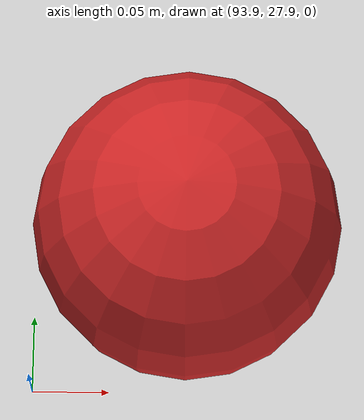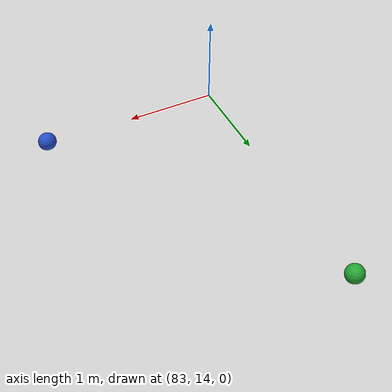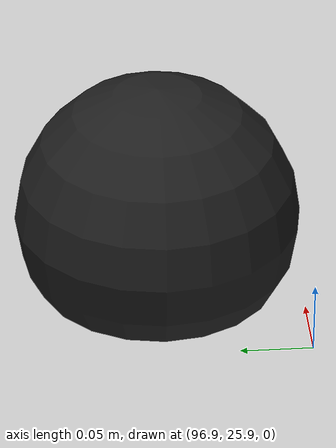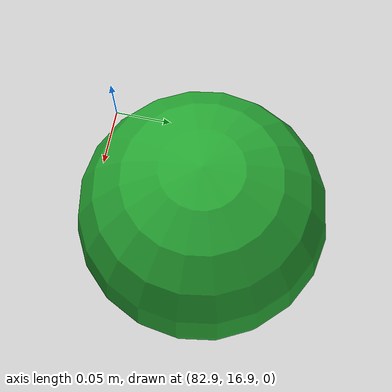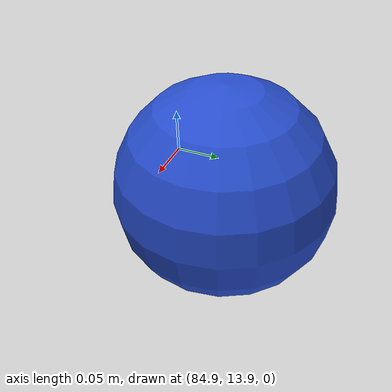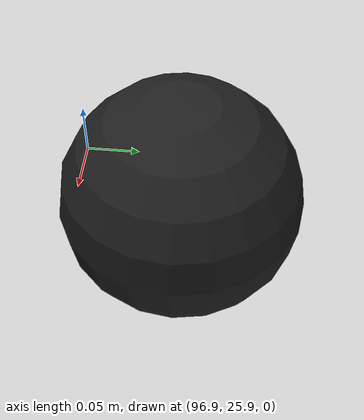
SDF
<sdf version="1.4">
 <world name="geonav">
  <light name="sun" type="directional">
   <pose>0 0 10 0 -0 0</pose>
   <diffuse>0.8 0.8 0.8 1</diffuse>
   <specular>0.2 0.2 0.2 1</specular>
   <attenuation>
    <range>1000</range>
    <constant>0.9</constant>
    <linear>0.01</linear>
    <quadratic>0.001</quadratic>
   </attenuation>
   <direction>-0.5 0.1 -0.9</direction>
  </light>
  <model name="ground_plane">
   <static>1</static>
   <link name="link">
    <collision name="collision">
     <geometry><plane><normal>0 0 1</normal><size>100 100</size></plane></geometry>
     <surface><friction><ode><mu>100</mu><mu2>50</mu2></ode></friction></surface>
    </collision>
    <visual name="visual">
     <transparency>0.8</transparency>
     <cast_shadows>0</cast_shadows>
     <geometry><plane><normal>0 0 1</normal><size>1000 1000</size></plane></geometry>
     <material>
      <script><uri>file://media/materials/scripts/gazebo.material</uri><name>Gazebo/Grey</name></script>
     </material>
    </visual>
    <velocity_decay><linear>0</linear><angular>0</angular></velocity_decay>
   </link>
  </model>
  <model name="WP1">
   <pose>94 28 0.05 0 -0 0</pose>
   <static>true</static>
   <link name="link">
    <visual name="visual">
     <geometry><sphere><radius>0.1</radius></sphere></geometry>
     <material>
      <script><uri>file://media/materials/scripts/gazebo.material</uri><name>Gazebo/Red</name></script>
     </material>
    </visual>
   </link>
  </model>
  <model name="WP2">
   <pose>83 17 0.05 0 -0 0</pose>
   <static>true</static>
   <link name="link">
    <visual name="visual">
     <geometry><sphere><radius>0.1</radius></sphere></geometry>
     <material>
      <script><uri>file://media/materials/scripts/gazebo.material</uri><name>Gazebo/Green</name></script>
     </material>
    </visual>
   </link>
  </model>
  <model name="WP3">
   <pose>85 14 0.05 0 -0 0</pose>
   <static>true</static>
   <link name="link">
    <visual name="visual">
     <geometry><sphere><radius>0.1</radius></sphere></geometry>
     <material>
      <script><uri>file://media/materials/scripts/gazebo.material</uri><name>Gazebo/Blue</name></script>
     </material>
    </visual>
   </link>
  </model>
  <model name="WP4">
   <pose>97 26 0.05 0 -0 0</pose>
   <static>true</static>
   <link name="link">
    <visual name="visual">
     <geometry><sphere><radius>0.1</radius></sphere></geometry>
     <material>
      <script><uri>file://media/materials/scripts/gazebo.material</uri><name>Gazebo/Black</name></script>
     </material>
    </visual>
   </link>
  </model>
 </world>
</sdf>
